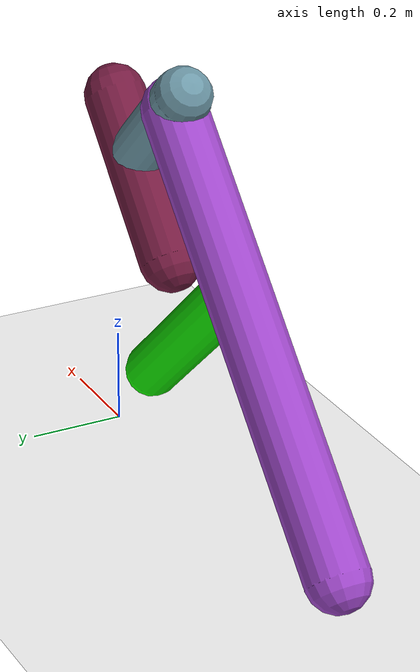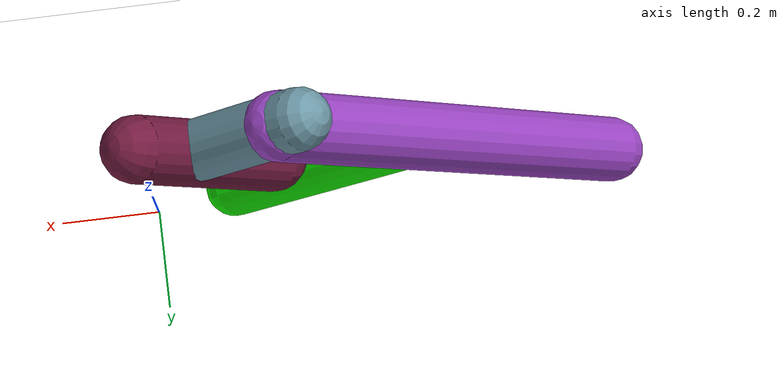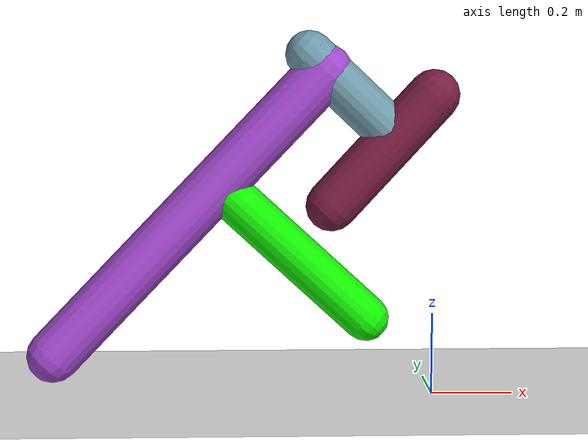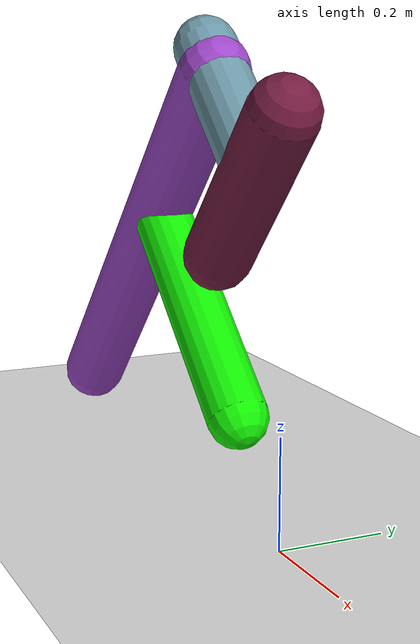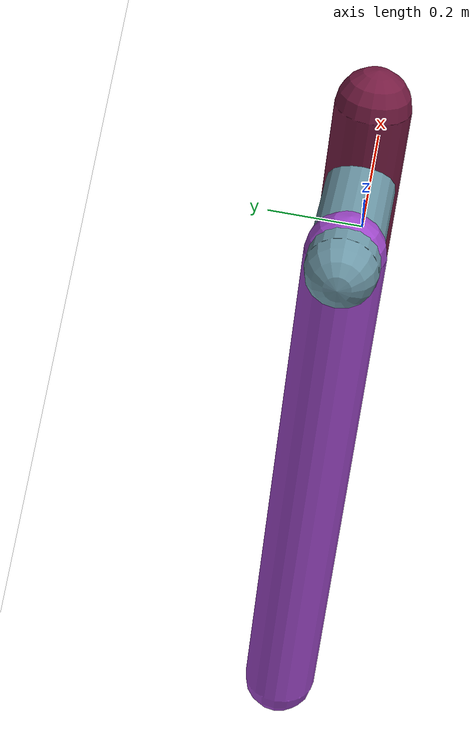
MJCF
<mujoco model="morphology">
  <option timestep="0.01"/>
  <default>
    <default class="/"/>
  </default>
  <asset>
    <texture name="texplane" type="2d" builtin="checker" rgb1="0.1 0.2 0.3" rgb2="0.2 0.3 0.4" width="300" height="300"/>
    <material name="MatPlane" class="/" texture="texplane" texrepeat="20 20" specular="1" shininess="1" reflectance="0.5"/>
  </asset>
  <worldbody>
    <light name="//unnamed_light_0" class="/" directional="true" pos="0 0 1.5" dir="0 0 -1.3" cutoff="1e+02" exponent="1" diffuse="1 1 1" specular="0.1 0.1 0.1"/>
    <geom name="ground" class="/" type="plane" size="15 15 0.5" material="MatPlane" rgba="1 1 1 1"/>
    <body name="body" pos="0 0 0.74">
      <geom name="geom0" class="/" type="capsule" contype="1" conaffinity="1" condim="3" size="0.064" rgba="0.46 0.11 0.26 1" friction="0.4 0.1 0.1" fromto="0 0 0 -0.25 0 -0.27"/>
      <body name="body1" pos="-0.095 0 -0.1">
        <geom name="geom1" class="/" type="capsule" contype="1" conaffinity="1" condim="3" size="0.059" rgba="0.43 0.6 0.66 1" friction="0.4 0.1 0.1" fromto="0 0 0 -0.21 0 0.2"/>
        <body name="body2" pos="-0.17 0 0.16">
          <geom name="geom2" class="/" type="capsule" contype="1" conaffinity="1" condim="3" size="0.066" rgba="0.62 0.28 0.79 1" friction="0.4 0.1 0.1" fromto="0 0 0 -0.67 0 -0.7"/>
          <body name="body3" pos="-0.27 0 -0.27">
            <geom name="geom3" class="/" type="capsule" contype="1" conaffinity="1" condim="3" size="0.057" rgba="0.071 0.94 0.0089 1" friction="0.4 0.1 0.1" fromto="0 0 0 0.37 0 -0.34"/>
            <joint name="joint3" class="/" type="hinge" axis="0 1 0" limited="true" stiffness="20" range="-61 61" armature="0.1" damping="2"/>
          </body>
          <joint name="joint2" class="/" type="hinge" axis="0 1 0" limited="true" stiffness="20" range="-58 58" armature="0.1" damping="2"/>
        </body>
        <joint name="joint1" class="/" type="hinge" axis="0 1 0" limited="true" stiffness="20" range="-51 51" armature="0.1" damping="2"/>
      </body>
      <joint name="rootx" class="/" type="slide" axis="1 0 0" limited="false" stiffness="0" armature="0" damping="0"/>
      <joint name="rootz" class="/" type="slide" axis="0 0 1" limited="false" stiffness="0" armature="0" damping="0"/>
      <joint name="rooty" class="/" type="hinge" axis="0 1 0" limited="false" stiffness="0" armature="0" damping="0"/>
    </body>
  </worldbody>
  <actuator>
    <motor name="motor3" class="/" ctrllimited="true" ctrlrange="-1 1" gear="1.8e+02" joint="joint3"/>
    <motor name="motor2" class="/" ctrllimited="true" ctrlrange="-1 1" gear="1.1e+02" joint="joint2"/>
    <motor name="motor1" class="/" ctrllimited="true" ctrlrange="-1 1" gear="1.8e+02" joint="joint1"/>
  </actuator>
  <sensor>
    <subtreelinvel name="velocity" body="body"/>
  </sensor>
</mujoco>
